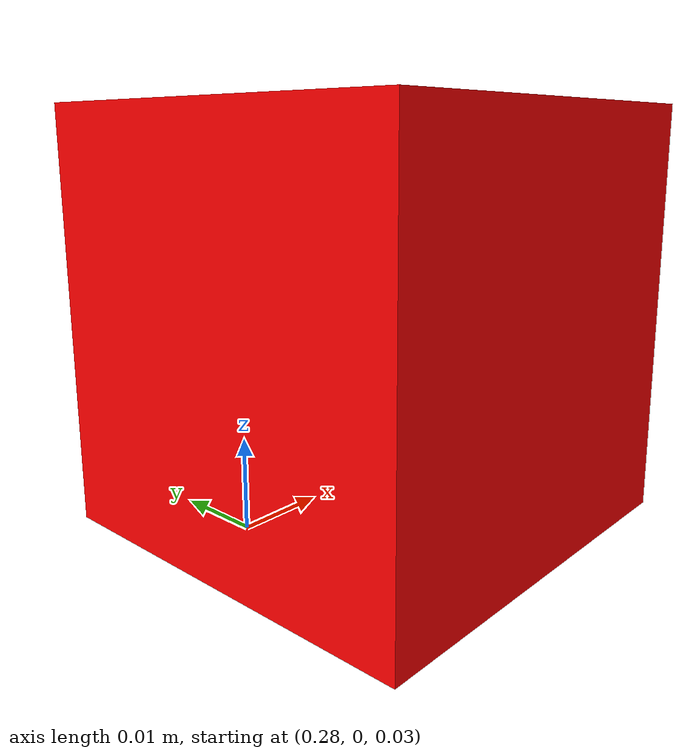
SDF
<sdf version="1.7">
  <model name="cube">
    <pose>0.3 0 0.05 0 0 0</pose>

    <link name="link">
      <collision name="collision">
        <geometry>
          <box>
            <size>0.05 0.05 0.05</size>
          </box>
        </geometry>
      </collision>

      <visual name="visual">
        <geometry>
          <box>
            <size>0.05 0.05 0.05</size>
          </box>
        </geometry>
        <material>
          <ambient>1 0 0 1</ambient>
        </material>
      </visual>

      <inertial>
        <mass>0.1</mass>
      </inertial>
    </link>
  </model>
</sdf>
